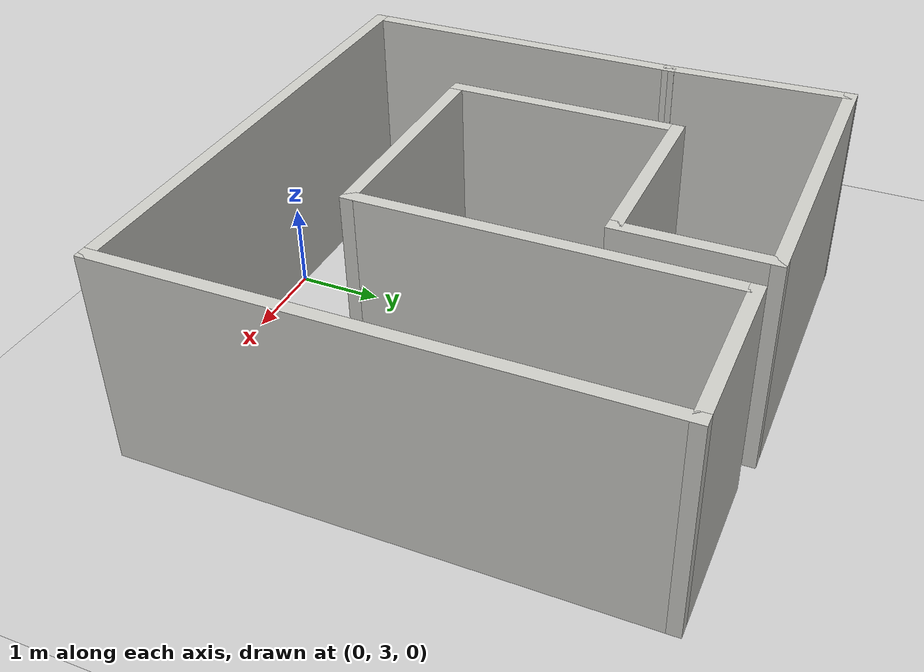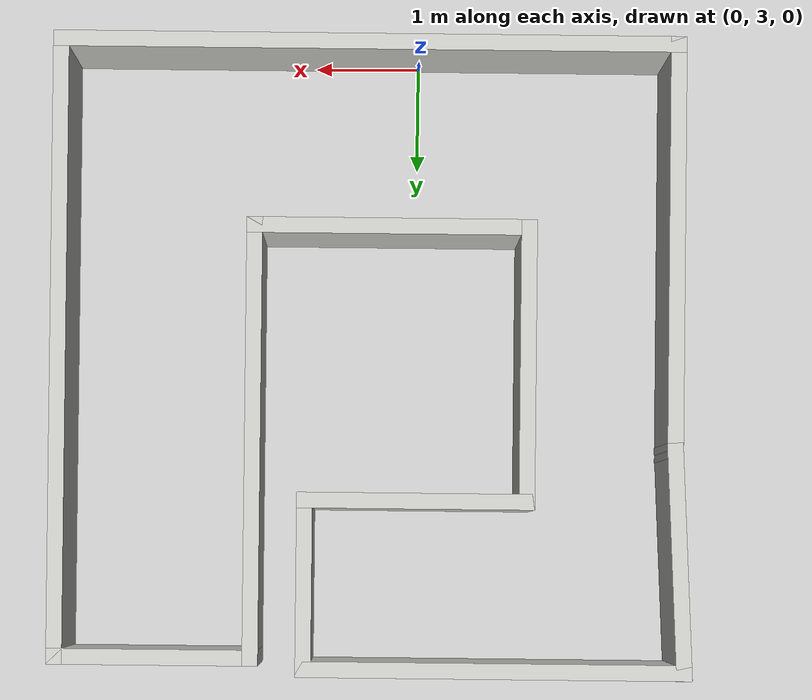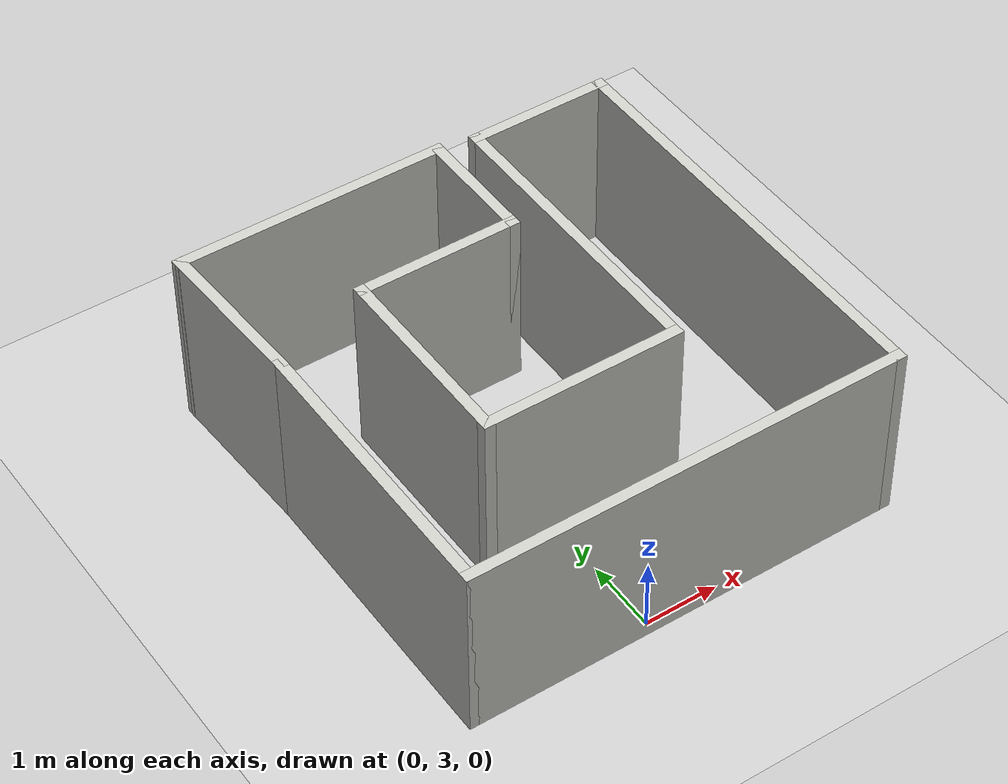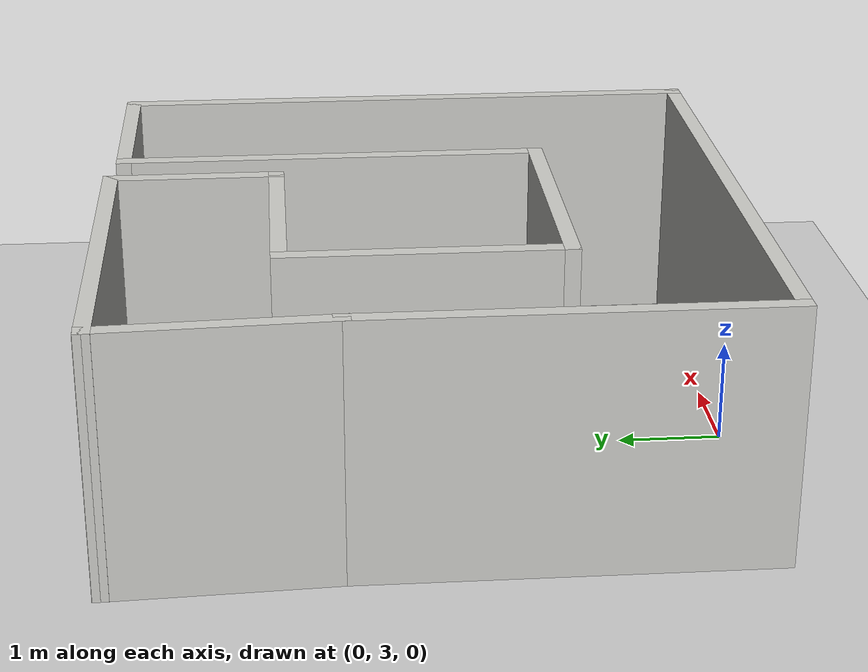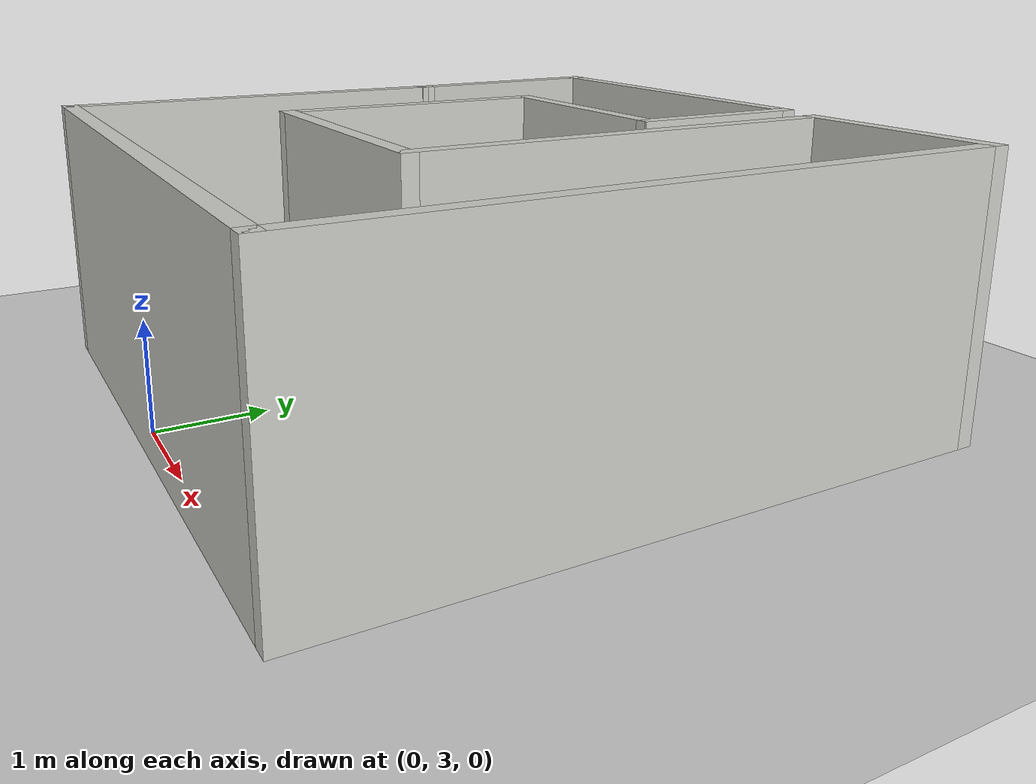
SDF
<sdf version="1.6">
 <world name="default">
  <light name="sun" type="directional">
   <pose>0 0 10 0 -0 0</pose>
   <diffuse>0.8 0.8 0.8 1</diffuse>
   <specular>0.2 0.2 0.2 1</specular>
   <attenuation>
    <range>1000</range>
    <constant>0.9</constant>
    <linear>0.01</linear>
    <quadratic>0.001</quadratic>
   </attenuation>
   <direction>-0.5 0.1 -0.9</direction>
  </light>
  <model name="ground_plane">
   <static>1</static>
   <link name="link">
    <collision name="collision">
     <geometry><plane><normal>0 0 1</normal><size>100 100</size></plane></geometry>
     <surface>
      <contact><collide_bitmask>65535</collide_bitmask></contact>
      <friction><ode><mu>100</mu><mu2>50</mu2></ode></friction>
     </surface>
    </collision>
    <visual name="visual">
     <cast_shadows>0</cast_shadows>
     <geometry><plane><normal>0 0 1</normal><size>100 100</size></plane></geometry>
     <material>
      <script><uri>file://media/materials/scripts/gazebo.material</uri><name>Gazebo/Grey</name></script>
     </material>
    </visual>
   </link>
  </model>
  <gravity>0 0 -9.8</gravity>
  <magnetic_field>6e-06 2.3e-05 -4.2e-05</magnetic_field>
  <atmosphere type="adiabatic"/>
  <physics name="default_physics" default="0" type="ode">
   <max_step_size>0.005</max_step_size>
   <real_time_factor>1</real_time_factor>
   <real_time_update_rate>5000</real_time_update_rate>
  </physics>
  <scene><ambient>0.4 0.4 0.4 1</ambient><background>0.7 0.7 0.7 1</background><shadows>1</shadows></scene>
  <audio><device>default</device></audio>
  <spherical_coordinates>
   <surface_model>EARTH_WGS84</surface_model>
   <latitude_deg>0</latitude_deg>
   <longitude_deg>0</longitude_deg>
   <elevation>0</elevation>
   <heading_deg>0</heading_deg>
  </spherical_coordinates>
  <model name="Untitled">
   <pose>0.425456 5.91309 0 0 -0 0</pose>
   <link name="Wall_10">
    <collision name="Wall_10_Collision">
     <geometry><box><size>2.75 0.15 2.5</size></box></geometry>
     <pose>0 0 1.25 0 -0 0</pose>
    </collision>
    <visual name="Wall_10_Visual">
     <pose>0 0 1.25 0 -0 0</pose>
     <geometry><box><size>2.75 0.15 2.5</size></box></geometry>
     <material>
      <script><uri>file://media/materials/scripts/gazebo.material</uri><name>Gazebo/CeilingTiled</name></script>
      <ambient>1 1 1 1</ambient>
     </material>
     <meta><layer>0</layer></meta>
    </visual>
    <pose>-1.47326 0.073259 0 0 -0 1.5708</pose>
   </link>
   <link name="Wall_11">
    <collision name="Wall_11_Collision">
     <geometry><box><size>2.25 0.15 2.5</size></box></geometry>
     <pose>0 0 1.25 0 -0 0</pose>
    </collision>
    <visual name="Wall_11_Visual">
     <pose>0 0 1.25 0 -0 0</pose>
     <geometry><box><size>2.25 0.15 2.5</size></box></geometry>
     <material>
      <script><uri>file://media/materials/scripts/gazebo.material</uri><name>Gazebo/CeilingTiled</name></script>
      <ambient>1 1 1 1</ambient>
     </material>
     <meta><layer>0</layer></meta>
    </visual>
    <pose>-0.423259 1.37326 0 0 -0 0</pose>
   </link>
   <link name="Wall_12">
    <collision name="Wall_12_Collision">
     <geometry><box><size>1.75 0.15 2.5</size></box></geometry>
     <pose>0 0 1.25 0 -0 0</pose>
    </collision>
    <visual name="Wall_12_Visual">
     <pose>0 0 1.25 0 -0 0</pose>
     <geometry><box><size>1.75 0.15 2.5</size></box></geometry>
     <material>
      <script><uri>file://media/materials/scripts/gazebo.material</uri><name>Gazebo/CeilingTiled</name></script>
      <ambient>1 1 1 1</ambient>
     </material>
     <meta><layer>0</layer></meta>
    </visual>
    <pose>0.626741 2.17326 0 0 -0 1.5708</pose>
   </link>
   <link name="Wall_13">
    <collision name="Wall_13_Collision">
     <geometry><box><size>3.75 0.15 2.5</size></box></geometry>
     <pose>0 0 1.25 0 -0 0</pose>
    </collision>
    <visual name="Wall_13_Visual">
     <pose>0 0 1.25 0 -0 0</pose>
     <geometry><box><size>3.75 0.15 2.5</size></box></geometry>
     <material>
      <script><uri>file://media/materials/scripts/gazebo.material</uri><name>Gazebo/CeilingTiled</name></script>
      <ambient>1 1 1 1</ambient>
     </material>
     <meta><layer>0</layer></meta>
    </visual>
    <pose>-1.17326 2.97326 0 0 -0 3.14159</pose>
   </link>
   <link name="Wall_14">
    <collision name="Wall_14_Collision">
     <geometry><box><size>2.25238 0.15 2.5</size></box></geometry>
     <pose>0 0 1.25 0 -0 0</pose>
    </collision>
    <visual name="Wall_14_Visual">
     <pose>0 0 1.25 0 -0 0</pose>
     <geometry><box><size>2.25238 0.15 2.5</size></box></geometry>
     <material>
      <script><uri>file://media/materials/scripts/gazebo.material</uri><name>Gazebo/CeilingTiled</name></script>
      <ambient>1 1 1 1</ambient>
     </material>
     <meta><layer>0</layer></meta>
    </visual>
    <pose>-2.92326 1.92326 0 0 -0 -1.52321</pose>
   </link>
   <link name="Wall_2">
    <collision name="Wall_2_Collision">
     <geometry><box><size>4 0.15 2.5</size></box></geometry>
     <pose>0 0 1.25 0 -0 0</pose>
    </collision>
    <visual name="Wall_2_Visual">
     <pose>0 0 1.25 0 -0 0</pose>
     <geometry><box><size>4 0.15 2.5</size></box></geometry>
     <material>
      <script><uri>file://media/materials/scripts/gazebo.material</uri><name>Gazebo/CeilingTiled</name></script>
      <ambient>1 1 1 1</ambient>
     </material>
     <meta><layer>0</layer></meta>
    </visual>
    <pose>-2.87326 -1.05174 0 0 -0 -1.5708</pose>
   </link>
   <link name="Wall_3">
    <collision name="Wall_3_Collision">
     <geometry><box><size>6 0.15 2.5</size></box></geometry>
     <pose>0 0 1.25 0 -0 0</pose>
    </collision>
    <visual name="Wall_3_Visual">
     <pose>0 0 1.25 0 -0 0</pose>
     <geometry><box><size>6 0.15 2.5</size></box></geometry>
     <material>
      <script><uri>file://media/materials/scripts/gazebo.material</uri><name>Gazebo/CeilingTiled</name></script>
      <ambient>1 1 1 1</ambient>
     </material>
     <meta><layer>0</layer></meta>
    </visual>
    <pose>0.051741 -2.97674 0 0 -0 0</pose>
   </link>
   <link name="Wall_4">
    <collision name="Wall_4_Collision">
     <geometry><box><size>6 0.15 2.5</size></box></geometry>
     <pose>0 0 1.25 0 -0 0</pose>
    </collision>
    <visual name="Wall_4_Visual">
     <pose>0 0 1.25 0 -0 0</pose>
     <geometry><box><size>6 0.15 2.5</size></box></geometry>
     <material>
      <script><uri>file://media/materials/scripts/gazebo.material</uri><name>Gazebo/CeilingTiled</name></script>
      <ambient>1 1 1 1</ambient>
     </material>
     <meta><layer>0</layer></meta>
    </visual>
    <pose>2.97674 -0.051741 0 0 -0 1.5708</pose>
   </link>
   <link name="Wall_6">
    <collision name="Wall_6_Collision">
     <geometry><box><size>2 0.15 2.5</size></box></geometry>
     <pose>0 0 1.25 0 -0 0</pose>
    </collision>
    <visual name="Wall_6_Visual">
     <pose>0 0 1.25 0 -0 0</pose>
     <geometry><box><size>2 0.15 2.5</size></box></geometry>
     <material>
      <script><uri>file://media/materials/scripts/gazebo.material</uri><name>Gazebo/CeilingTiled</name></script>
      <ambient>1 1 1 1</ambient>
     </material>
     <meta><layer>0</layer></meta>
    </visual>
    <pose>2.05174 2.87326 0 0 -0 3.14159</pose>
   </link>
   <link name="Wall_8">
    <collision name="Wall_8_Collision">
     <geometry><box><size>4.25 0.15 2.5</size></box></geometry>
     <pose>0 0 1.25 0 -0 0</pose>
    </collision>
    <visual name="Wall_8_Visual">
     <pose>0 0 1.25 0 -0 0</pose>
     <geometry><box><size>4.25 0.15 2.5</size></box></geometry>
     <material>
      <script><uri>file://media/materials/scripts/gazebo.material</uri><name>Gazebo/CeilingTiled</name></script>
      <ambient>1 1 1 1</ambient>
     </material>
     <meta><layer>0</layer></meta>
    </visual>
    <pose>1.12674 0.823259 0 0 -0 -1.5708</pose>
   </link>
   <link name="Wall_9">
    <collision name="Wall_9_Collision">
     <geometry><box><size>2.75 0.15 2.5</size></box></geometry>
     <pose>0 0 1.25 0 -0 0</pose>
    </collision>
    <visual name="Wall_9_Visual">
     <pose>0 0 1.25 0 -0 0</pose>
     <geometry><box><size>2.75 0.15 2.5</size></box></geometry>
     <material>
      <script><uri>file://media/materials/scripts/gazebo.material</uri><name>Gazebo/CeilingTiled</name></script>
      <ambient>1 1 1 1</ambient>
     </material>
     <meta><layer>0</layer></meta>
    </visual>
    <pose>-0.173259 -1.22674 0 0 -0 3.14159</pose>
   </link>
   <static>1</static>
  </model>
 </world>
</sdf>
